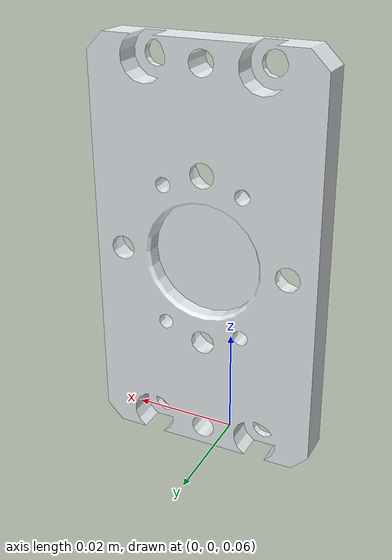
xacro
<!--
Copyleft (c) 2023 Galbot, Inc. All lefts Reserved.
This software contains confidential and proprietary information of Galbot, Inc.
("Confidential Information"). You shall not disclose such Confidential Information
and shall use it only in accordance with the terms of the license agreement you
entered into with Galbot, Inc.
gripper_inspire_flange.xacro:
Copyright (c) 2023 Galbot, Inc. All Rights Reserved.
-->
<?xml version="1.0"?>
<robot name="test_gripper_inspire_flange" xmlns:xacro="http://ros.org/wiki/xacro">
    <!-- Include-->
    <xacro:include filename="$(find galbot_description)/urdf/adapter/gripper_inspire_flange.xacro" />
    <!-- Properties -->
    <xacro:property name="M_PI" value="3.1415926535897931" />
    <!-- Parent link -->
    <link name="base_link" />
    <xacro:gripper_inspire_flange parent="base_link" name="left_gripper_inspire_flange">
        <origin xyz="0 0 0.1" rpy="0 0 0" />
    </xacro:gripper_inspire_flange>
</robot>

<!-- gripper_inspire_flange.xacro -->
<robot name="gripper_inspire_flange" xmlns:xacro="http://ros.org/wiki/xacro">

    <xacro:macro name="gripper_inspire_flange"
        params="parent *origin  name:=gripper_inspire_flange">
        <xacro:property name="M_PI" value="3.1415926535897931" />

        <joint name="${name}_joint" type="fixed">
            <xacro:insert_block name="origin" />
            <parent link="${parent}" />
            <child link="${name}_link" />
        </joint>

        <link name="${name}_link">
            <inertial>
                <origin
                    xyz="4.66209947996709E-18 0.00877518164309892 -3.1251302459899E-18"
                    rpy="0 0 0" />
                <mass
                    value="0.0383576184712739" />
                <inertia
                    ixx="1.61354132282382E-05"
                    ixy="-1.487729570353E-22"
                    ixz="-4.39698194360219E-21"
                    iyy="2.14391936917384E-05"
                    iyz="4.44711891564739E-23"
                    izz="5.57165635757638E-06" />
            </inertial>
            <visual>
                <origin
                    xyz="0 0 0"
                    rpy="0 0 0" />
                <geometry>
                    <mesh
                        filename="package://galbot_description/meshes/adapter/gripper_inspire_flange.stl" />
                </geometry>
                <material
                    name="">
                    <color
                        rgba="0.898039215686275 0.917647058823529 0.929411764705882 1" />
                </material>
            </visual>
            <collision>
                <origin
                    xyz="0 0 0"
                    rpy="0 0 0" />
                <geometry>
                    <mesh
                        filename="package://galbot_description/meshes/adapter/gripper_inspire_flange.stl" />
                </geometry>
            </collision>
        </link>
    </xacro:macro>
</robot>
